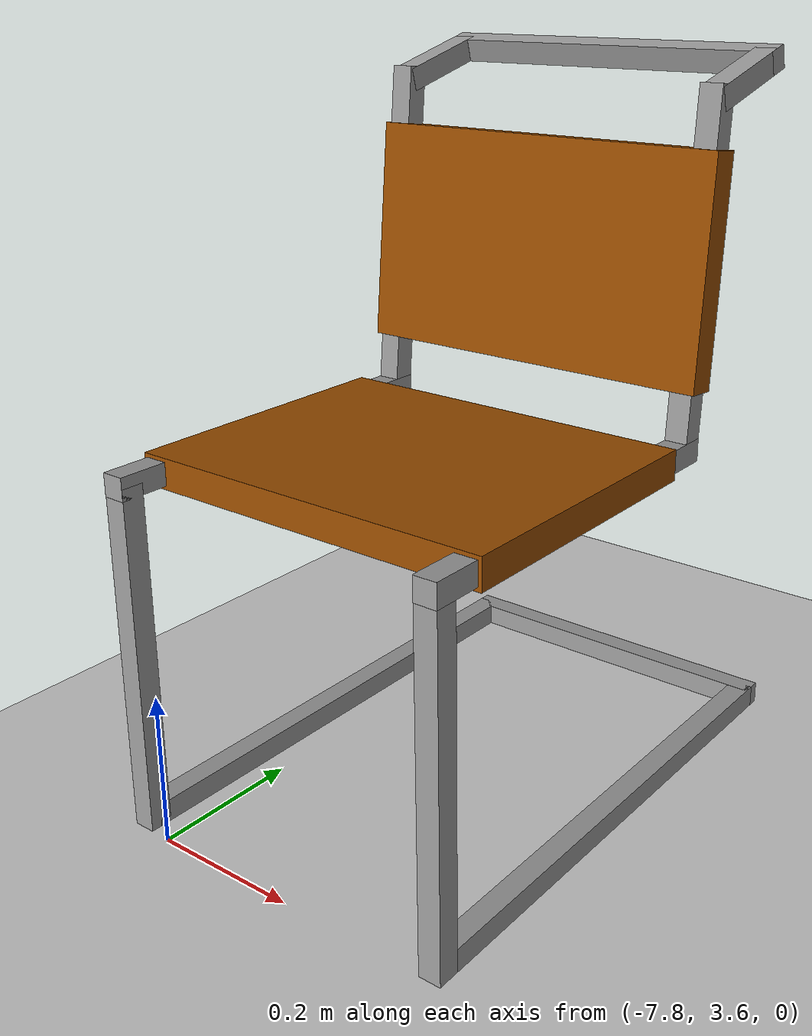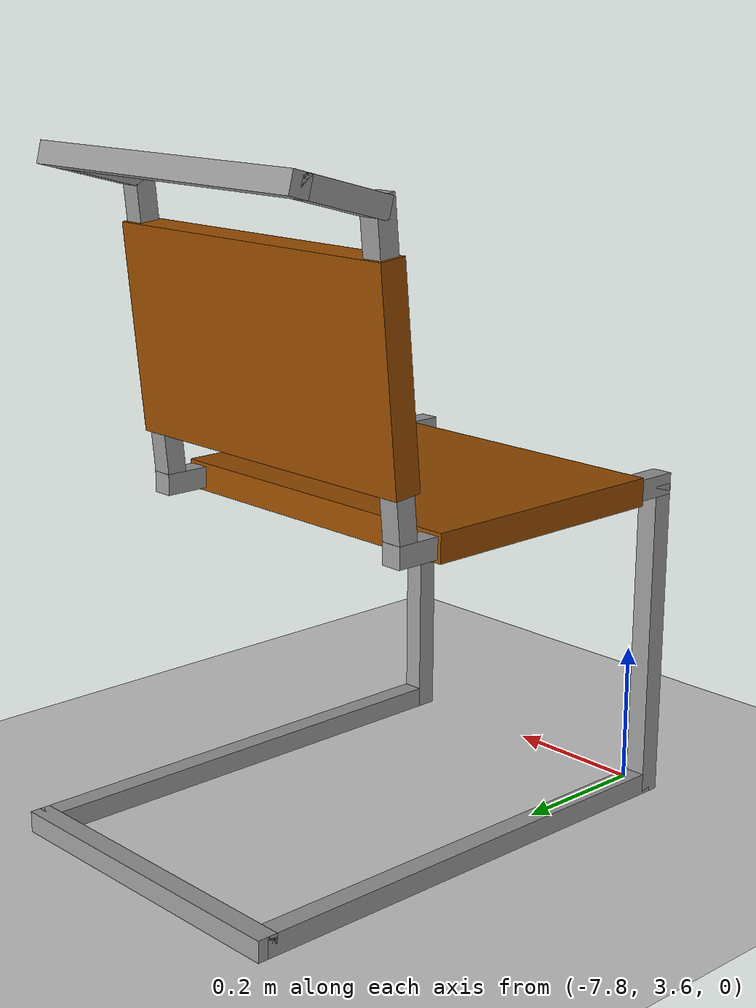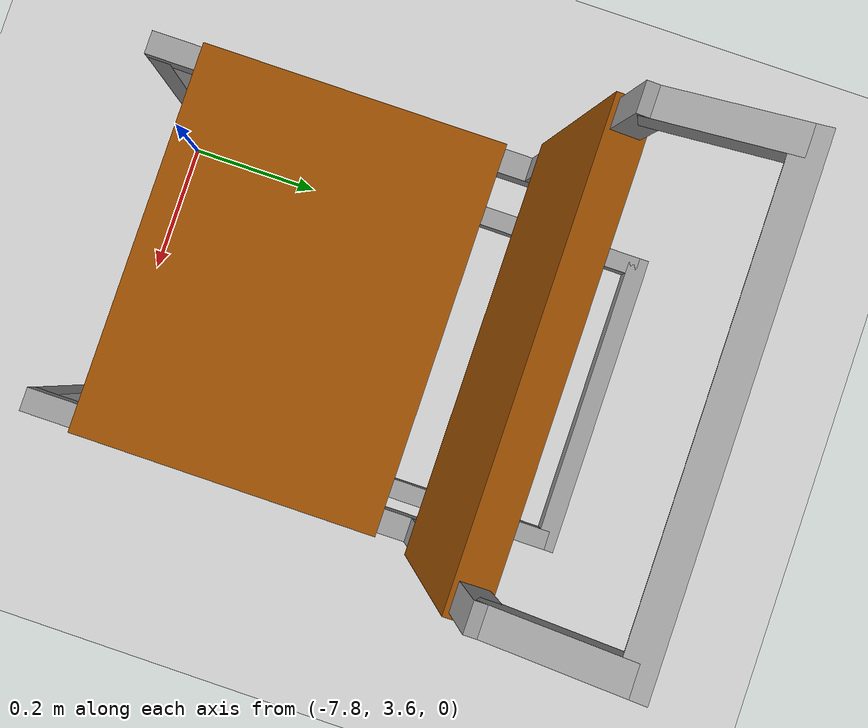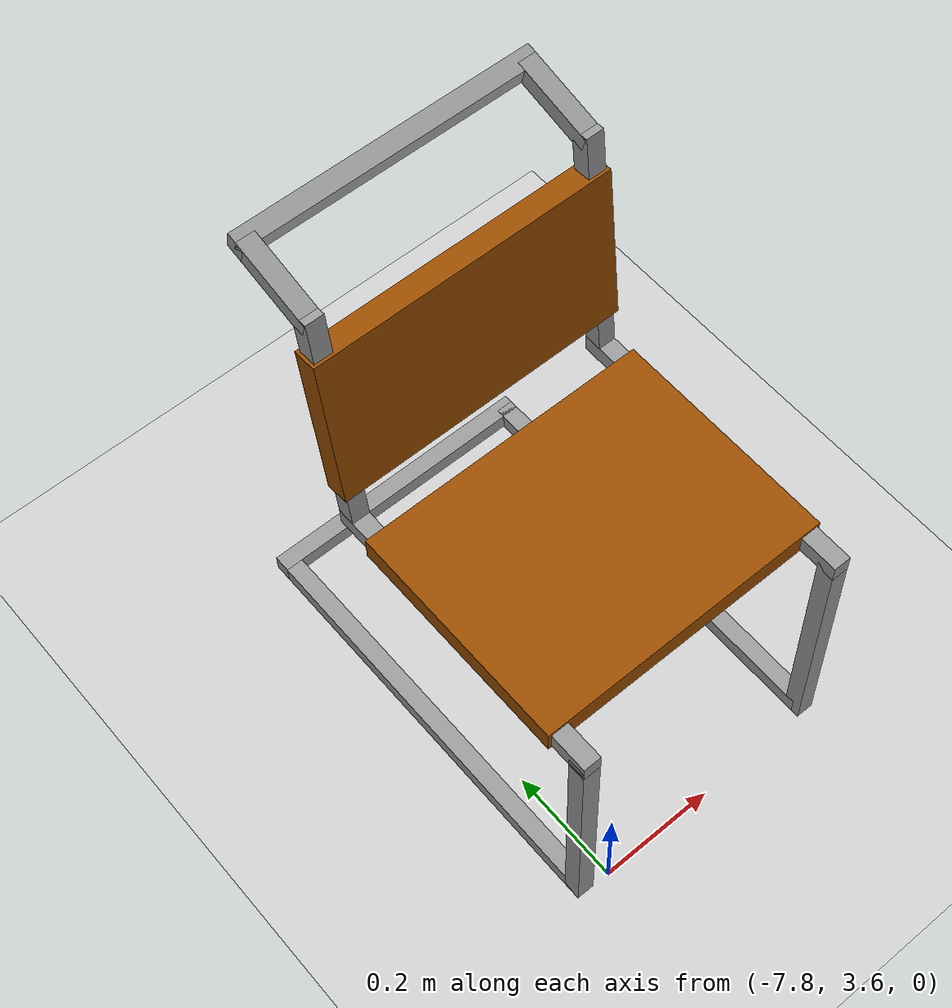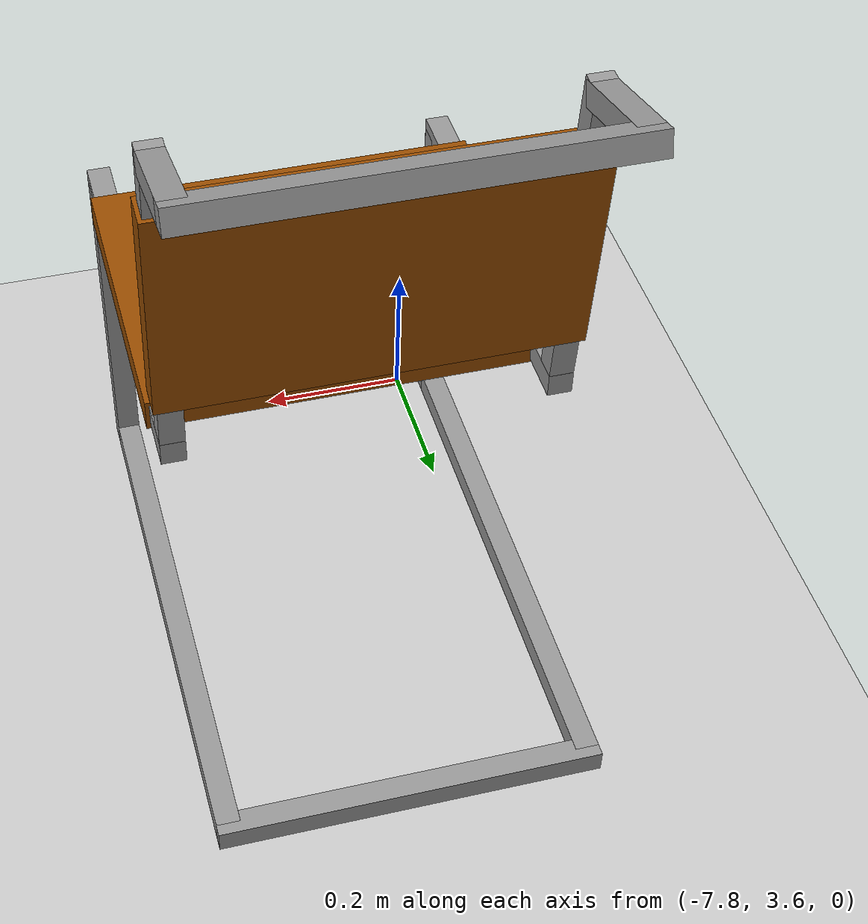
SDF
<sdf version="1.6">
 <world name="default">
  <model name="ground_plane">
   <static>1</static>
   <link name="link">
    <collision name="collision">
     <geometry><plane><normal>0 0 1</normal><size>100 100</size></plane></geometry>
     <surface><friction><ode><mu>100</mu><mu2>50</mu2></ode></friction></surface>
    </collision>
    <visual name="visual">
     <cast_shadows>0</cast_shadows>
     <geometry><plane><normal>0 0 1</normal><size>100 100</size></plane></geometry>
     <material>
      <script><uri>file://media/materials/scripts/gazebo.material</uri><name>Gazebo/Grey</name></script>
     </material>
    </visual>
   </link>
  </model>
  <model name="side_chair_1">
   <link name="link_3">
    <pose>0.475 0 0.46 0 -0 0</pose>
    <inertial>
     <mass>1</mass>
     <inertia>
      <ixx>0.166667</ixx>
      <ixy>0</ixy>
      <ixz>0</ixz>
      <iyy>0.166667</iyy>
      <iyz>0</iyz>
      <izz>0.166667</izz>
     </inertia>
    </inertial>
    <visual name="visual">
     <geometry><box><size>0.39 0.5 0.04</size></box></geometry>
     <material>
      <lighting>1</lighting>
      <script><uri>file://media/materials/scripts/gazebo.material</uri><name>Gazebo/Grey</name></script>
      <shader type="pixel"><normal_map>__default__</normal_map></shader>
      <ambient>0.6 0.3 0 1</ambient>
      <diffuse>0.7 0.7 0.7 1</diffuse>
      <specular>0.01 0.01 0.01 1</specular>
      <emissive>0 0 0 1</emissive>
     </material>
    </visual>
    <collision name="collision">
     <geometry><box><size>0.39 0.5 0.04</size></box></geometry>
     <surface>
      <friction>
       <ode><mu>1</mu><mu2>1</mu2><fdir1>0 0 0</fdir1><slip1>0</slip1><slip2>0</slip2></ode>
       <torsional>
        <coefficient>1</coefficient>
        <patch_radius>0</patch_radius>
        <surface_radius>0</surface_radius>
        <use_patch_radius>1</use_patch_radius>
        <ode><slip>0</slip></ode>
       </torsional>
      </friction>
      <bounce><restitution_coefficient>0</restitution_coefficient><threshold>1e+06</threshold></bounce>
      <contact>
       <collide_without_contact>0</collide_without_contact>
       <collide_without_contact_bitmask>1</collide_without_contact_bitmask>
       <collide_bitmask>1</collide_bitmask>
       <ode>
        <soft_cfm>0</soft_cfm>
        <soft_erp>0.2</soft_erp>
        <kp>1e+13</kp>
        <kd>1</kd>
        <max_vel>0.01</max_vel>
        <min_depth>0</min_depth>
       </ode>
       <bullet>
        <split_impulse>1</split_impulse>
        <split_impulse_penetration_threshold>-0.01</split_impulse_penetration_threshold>
        <soft_cfm>0</soft_cfm>
        <soft_erp>0.2</soft_erp>
        <kp>1e+13</kp>
        <kd>1</kd>
       </bullet>
      </contact>
     </surface>
    </collision>
   </link>
   <link name="link_3_clone">
    <pose>0.21 0 0.68 0 1.4739 0</pose>
    <inertial>
     <mass>0.748385</mass>
     <inertia>
      <ixx>0.0150301</ixx>
      <ixy>0</ixy>
      <ixz>0</ixz>
      <iyy>0.0053689</iyy>
      <iyz>0</iyz>
      <izz>0.0202867</izz>
     </inertia>
    </inertial>
    <visual name="visual">
     <geometry><box><size>0.29 0.5 0.04</size></box></geometry>
     <material>
      <lighting>1</lighting>
      <script><uri>file://media/materials/scripts/gazebo.material</uri><name>Gazebo/Grey</name></script>
      <shader type="pixel"><normal_map>__default__</normal_map></shader>
      <ambient>0.6 0.3 0 1</ambient>
      <diffuse>0.7 0.7 0.7 1</diffuse>
      <specular>0.01 0.01 0.01 1</specular>
      <emissive>0 0 0 1</emissive>
     </material>
    </visual>
    <collision name="collision">
     <geometry><box><size>0.29 0.5 0.04</size></box></geometry>
     <surface>
      <friction>
       <ode><mu>1</mu><mu2>1</mu2><fdir1>0 0 0</fdir1><slip1>0</slip1><slip2>0</slip2></ode>
       <torsional>
        <coefficient>1</coefficient>
        <patch_radius>0</patch_radius>
        <surface_radius>0</surface_radius>
        <use_patch_radius>1</use_patch_radius>
        <ode><slip>0</slip></ode>
       </torsional>
      </friction>
      <bounce><restitution_coefficient>0</restitution_coefficient><threshold>1e+06</threshold></bounce>
      <contact>
       <collide_without_contact>0</collide_without_contact>
       <collide_without_contact_bitmask>1</collide_without_contact_bitmask>
       <collide_bitmask>1</collide_bitmask>
       <ode>
        <soft_cfm>0</soft_cfm>
        <soft_erp>0.2</soft_erp>
        <kp>1e+13</kp>
        <kd>1</kd>
        <max_vel>0.01</max_vel>
        <min_depth>0</min_depth>
       </ode>
       <bullet>
        <split_impulse>1</split_impulse>
        <split_impulse_penetration_threshold>-0.01</split_impulse_penetration_threshold>
        <soft_cfm>0</soft_cfm>
        <soft_erp>0.2</soft_erp>
        <kp>1e+13</kp>
        <kd>1</kd>
       </bullet>
      </contact>
     </surface>
    </collision>
   </link>
   <link name="link_3_clone_0">
    <pose>0.475 -0.23 0.46 0 -0 0</pose>
    <inertial>
     <mass>1.33571</mass>
     <inertia>
      <ixx>0.00020036</ixx>
      <ixy>0</ixy>
      <ixz>0</ixz>
      <iyy>0.0303055</iyy>
      <iyz>0</iyz>
      <izz>0.0303055</izz>
     </inertia>
    </inertial>
    <visual name="visual">
     <geometry><box><size>0.520926 0.03 0.03</size></box></geometry>
     <material>
      <lighting>1</lighting>
      <script><uri>file://media/materials/scripts/gazebo.material</uri><name>Gazebo/Grey</name></script>
      <shader type="pixel"><normal_map>__default__</normal_map></shader>
      <ambient>0.75 0.75 0.75 1</ambient>
      <diffuse>0.7 0.7 0.7 1</diffuse>
      <specular>0.01 0.01 0.01 1</specular>
      <emissive>0 0 0 1</emissive>
     </material>
    </visual>
    <collision name="collision">
     <geometry><box><size>0.520926 0.03 0.03</size></box></geometry>
     <surface>
      <friction>
       <ode><mu>1</mu><mu2>1</mu2><fdir1>0 0 0</fdir1><slip1>0</slip1><slip2>0</slip2></ode>
       <torsional>
        <coefficient>1</coefficient>
        <patch_radius>0</patch_radius>
        <surface_radius>0</surface_radius>
        <use_patch_radius>1</use_patch_radius>
        <ode><slip>0</slip></ode>
       </torsional>
      </friction>
      <bounce><restitution_coefficient>0</restitution_coefficient><threshold>1e+06</threshold></bounce>
      <contact>
       <collide_without_contact>0</collide_without_contact>
       <collide_without_contact_bitmask>1</collide_without_contact_bitmask>
       <collide_bitmask>1</collide_bitmask>
       <ode>
        <soft_cfm>0</soft_cfm>
        <soft_erp>0.2</soft_erp>
        <kp>1e+13</kp>
        <kd>1</kd>
        <max_vel>0.01</max_vel>
        <min_depth>0</min_depth>
       </ode>
       <bullet>
        <split_impulse>1</split_impulse>
        <split_impulse_penetration_threshold>-0.01</split_impulse_penetration_threshold>
        <soft_cfm>0</soft_cfm>
        <soft_erp>0.2</soft_erp>
        <kp>1e+13</kp>
        <kd>1</kd>
       </bullet>
      </contact>
     </surface>
    </collision>
   </link>
   <link name="link_3_clone_0_clone">
    <pose>0.72 -0.23 0.23 0 -0 0</pose>
    <inertial>
     <mass>1.33571</mass>
     <inertia>
      <ixx>0.00020036</ixx>
      <ixy>0</ixy>
      <ixz>0</ixz>
      <iyy>0.0303055</iyy>
      <iyz>0</iyz>
      <izz>0.0303055</izz>
     </inertia>
    </inertial>
    <visual name="visual">
     <geometry><box><size>0.03 0.03 0.46</size></box></geometry>
     <material>
      <lighting>1</lighting>
      <script><uri>file://media/materials/scripts/gazebo.material</uri><name>Gazebo/Grey</name></script>
      <shader type="pixel"><normal_map>__default__</normal_map></shader>
      <ambient>0.75 0.75 0.75 1</ambient>
      <diffuse>0.7 0.7 0.7 1</diffuse>
      <specular>0.01 0.01 0.01 1</specular>
      <emissive>0 0 0 1</emissive>
     </material>
    </visual>
    <collision name="collision">
     <geometry><box><size>0.03 0.03 0.46</size></box></geometry>
     <surface>
      <friction>
       <ode><mu>1</mu><mu2>1</mu2><fdir1>0 0 0</fdir1><slip1>0</slip1><slip2>0</slip2></ode>
       <torsional>
        <coefficient>1</coefficient>
        <patch_radius>0</patch_radius>
        <surface_radius>0</surface_radius>
        <use_patch_radius>1</use_patch_radius>
        <ode><slip>0</slip></ode>
       </torsional>
      </friction>
      <bounce><restitution_coefficient>0</restitution_coefficient><threshold>1e+06</threshold></bounce>
      <contact>
       <collide_without_contact>0</collide_without_contact>
       <collide_without_contact_bitmask>1</collide_without_contact_bitmask>
       <collide_bitmask>1</collide_bitmask>
       <ode>
        <soft_cfm>0</soft_cfm>
        <soft_erp>0.2</soft_erp>
        <kp>1e+13</kp>
        <kd>1</kd>
        <max_vel>0.01</max_vel>
        <min_depth>0</min_depth>
       </ode>
       <bullet>
        <split_impulse>1</split_impulse>
        <split_impulse_penetration_threshold>-0.01</split_impulse_penetration_threshold>
        <soft_cfm>0</soft_cfm>
        <soft_erp>0.2</soft_erp>
        <kp>1e+13</kp>
        <kd>1</kd>
       </bullet>
      </contact>
     </surface>
    </collision>
   </link>
   <link name="link_3_clone_0_clone_0">
    <pose>0.36 -0.23 0.015 0 -0 0</pose>
    <inertial>
     <mass>1.84718</mass>
     <inertia>
      <ixx>0.00027708</ixx>
      <ixy>0</ixy>
      <ixz>0</ixz>
      <iyy>0.0800255</iyy>
      <iyz>0</iyz>
      <izz>0.0800255</izz>
     </inertia>
    </inertial>
    <visual name="visual">
     <geometry><box><size>0.7204 0.03 0.03</size></box></geometry>
     <material>
      <lighting>1</lighting>
      <script><uri>file://media/materials/scripts/gazebo.material</uri><name>Gazebo/Grey</name></script>
      <shader type="pixel"><normal_map>__default__</normal_map></shader>
      <ambient>0.75 0.75 0.75 1</ambient>
      <diffuse>0.7 0.7 0.7 1</diffuse>
      <specular>0.01 0.01 0.01 1</specular>
      <emissive>0 0 0 1</emissive>
     </material>
    </visual>
    <collision name="collision">
     <geometry><box><size>0.7204 0.03 0.03</size></box></geometry>
     <surface>
      <friction>
       <ode><mu>1</mu><mu2>1</mu2><fdir1>0 0 0</fdir1><slip1>0</slip1><slip2>0</slip2></ode>
       <torsional>
        <coefficient>1</coefficient>
        <patch_radius>0</patch_radius>
        <surface_radius>0</surface_radius>
        <use_patch_radius>1</use_patch_radius>
        <ode><slip>0</slip></ode>
       </torsional>
      </friction>
      <bounce><restitution_coefficient>0</restitution_coefficient><threshold>1e+06</threshold></bounce>
      <contact>
       <collide_without_contact>0</collide_without_contact>
       <collide_without_contact_bitmask>1</collide_without_contact_bitmask>
       <collide_bitmask>1</collide_bitmask>
       <ode>
        <soft_cfm>0</soft_cfm>
        <soft_erp>0.2</soft_erp>
        <kp>1e+13</kp>
        <kd>1</kd>
        <max_vel>0.01</max_vel>
        <min_depth>0</min_depth>
       </ode>
       <bullet>
        <split_impulse>1</split_impulse>
        <split_impulse_penetration_threshold>-0.01</split_impulse_penetration_threshold>
        <soft_cfm>0</soft_cfm>
        <soft_erp>0.2</soft_erp>
        <kp>1e+13</kp>
        <kd>1</kd>
       </bullet>
      </contact>
     </surface>
    </collision>
   </link>
   <link name="link_3_clone_0_clone_0_clone">
    <pose>0.13 -0.23 0.9 0 0.262585 0</pose>
    <inertial>
     <mass>0.359555</mass>
     <inertia>
      <ixx>5.393e-05</ixx>
      <ixy>0</ixy>
      <ixz>0</ixz>
      <iyy>0.00061614</iyy>
      <iyz>0</iyz>
      <izz>0.00061614</izz>
     </inertia>
    </inertial>
    <visual name="visual">
     <geometry><box><size>0.140226 0.03 0.03</size></box></geometry>
     <material>
      <lighting>1</lighting>
      <script><uri>file://media/materials/scripts/gazebo.material</uri><name>Gazebo/Grey</name></script>
      <shader type="pixel"><normal_map>__default__</normal_map></shader>
      <ambient>0.75 0.75 0.75 1</ambient>
      <diffuse>0.7 0.7 0.7 1</diffuse>
      <specular>0.01 0.01 0.01 1</specular>
      <emissive>0 0 0 1</emissive>
     </material>
    </visual>
    <collision name="collision">
     <geometry><box><size>0.140226 0.03 0.03</size></box></geometry>
     <surface>
      <friction>
       <ode><mu>1</mu><mu2>1</mu2><fdir1>0 0 0</fdir1><slip1>0</slip1><slip2>0</slip2></ode>
       <torsional>
        <coefficient>1</coefficient>
        <patch_radius>0</patch_radius>
        <surface_radius>0</surface_radius>
        <use_patch_radius>1</use_patch_radius>
        <ode><slip>0</slip></ode>
       </torsional>
      </friction>
      <bounce><restitution_coefficient>0</restitution_coefficient><threshold>1e+06</threshold></bounce>
      <contact>
       <collide_without_contact>0</collide_without_contact>
       <collide_without_contact_bitmask>1</collide_without_contact_bitmask>
       <collide_bitmask>1</collide_bitmask>
       <ode>
        <soft_cfm>0</soft_cfm>
        <soft_erp>0.2</soft_erp>
        <kp>1e+13</kp>
        <kd>1</kd>
        <max_vel>0.01</max_vel>
        <min_depth>0</min_depth>
       </ode>
       <bullet>
        <split_impulse>1</split_impulse>
        <split_impulse_penetration_threshold>-0.01</split_impulse_penetration_threshold>
        <soft_cfm>0</soft_cfm>
        <soft_erp>0.2</soft_erp>
        <kp>1e+13</kp>
        <kd>1</kd>
       </bullet>
      </contact>
     </surface>
    </collision>
   </link>
   <link name="link_3_clone_0_clone_0_clone_0">
    <pose>0.36 0.23 0.015 0 -0 0</pose>
    <inertial>
     <mass>1.84718</mass>
     <inertia>
      <ixx>0.00027708</ixx>
      <ixy>0</ixy>
      <ixz>0</ixz>
      <iyy>0.0800255</iyy>
      <iyz>0</iyz>
      <izz>0.0800255</izz>
     </inertia>
    </inertial>
    <visual name="visual">
     <geometry><box><size>0.7204 0.03 0.03</size></box></geometry>
     <material>
      <lighting>1</lighting>
      <script><uri>file://media/materials/scripts/gazebo.material</uri><name>Gazebo/Grey</name></script>
      <shader type="pixel"><normal_map>__default__</normal_map></shader>
      <ambient>0.75 0.75 0.75 1</ambient>
      <diffuse>0.7 0.7 0.7 1</diffuse>
      <specular>0.01 0.01 0.01 1</specular>
      <emissive>0 0 0 1</emissive>
     </material>
    </visual>
    <collision name="collision">
     <geometry><box><size>0.7204 0.03 0.03</size></box></geometry>
     <surface>
      <friction>
       <ode><mu>1</mu><mu2>1</mu2><fdir1>0 0 0</fdir1><slip1>0</slip1><slip2>0</slip2></ode>
       <torsional>
        <coefficient>1</coefficient>
        <patch_radius>0</patch_radius>
        <surface_radius>0</surface_radius>
        <use_patch_radius>1</use_patch_radius>
        <ode><slip>0</slip></ode>
       </torsional>
      </friction>
      <bounce><restitution_coefficient>0</restitution_coefficient><threshold>1e+06</threshold></bounce>
      <contact>
       <collide_without_contact>0</collide_without_contact>
       <collide_without_contact_bitmask>1</collide_without_contact_bitmask>
       <collide_bitmask>1</collide_bitmask>
       <ode>
        <soft_cfm>0</soft_cfm>
        <soft_erp>0.2</soft_erp>
        <kp>1e+13</kp>
        <kd>1</kd>
        <max_vel>0.01</max_vel>
        <min_depth>0</min_depth>
       </ode>
       <bullet>
        <split_impulse>1</split_impulse>
        <split_impulse_penetration_threshold>-0.01</split_impulse_penetration_threshold>
        <soft_cfm>0</soft_cfm>
        <soft_erp>0.2</soft_erp>
        <kp>1e+13</kp>
        <kd>1</kd>
       </bullet>
      </contact>
     </surface>
    </collision>
   </link>
   <link name="link_3_clone_0_clone_0_clone_clone">
    <pose>0.13 0.23 0.9 0 0.262585 0</pose>
    <inertial>
     <mass>0.359555</mass>
     <inertia>
      <ixx>5.393e-05</ixx>
      <ixy>0</ixy>
      <ixz>0</ixz>
      <iyy>0.00061614</iyy>
      <iyz>0</iyz>
      <izz>0.00061614</izz>
     </inertia>
    </inertial>
    <visual name="visual">
     <geometry><box><size>0.140226 0.03 0.03</size></box></geometry>
     <material>
      <lighting>1</lighting>
      <script><uri>file://media/materials/scripts/gazebo.material</uri><name>Gazebo/Grey</name></script>
      <shader type="pixel"><normal_map>__default__</normal_map></shader>
      <ambient>0.75 0.75 0.75 1</ambient>
      <diffuse>0.7 0.7 0.7 1</diffuse>
      <specular>0.01 0.01 0.01 1</specular>
      <emissive>0 0 0 1</emissive>
     </material>
    </visual>
    <collision name="collision">
     <geometry><box><size>0.140226 0.03 0.03</size></box></geometry>
     <surface>
      <friction>
       <ode><mu>1</mu><mu2>1</mu2><fdir1>0 0 0</fdir1><slip1>0</slip1><slip2>0</slip2></ode>
       <torsional>
        <coefficient>1</coefficient>
        <patch_radius>0</patch_radius>
        <surface_radius>0</surface_radius>
        <use_patch_radius>1</use_patch_radius>
        <ode><slip>0</slip></ode>
       </torsional>
      </friction>
      <bounce><restitution_coefficient>0</restitution_coefficient><threshold>1e+06</threshold></bounce>
      <contact>
       <collide_without_contact>0</collide_without_contact>
       <collide_without_contact_bitmask>1</collide_without_contact_bitmask>
       <collide_bitmask>1</collide_bitmask>
       <ode>
        <soft_cfm>0</soft_cfm>
        <soft_erp>0.2</soft_erp>
        <kp>1e+13</kp>
        <kd>1</kd>
        <max_vel>0.01</max_vel>
        <min_depth>0</min_depth>
       </ode>
       <bullet>
        <split_impulse>1</split_impulse>
        <split_impulse_penetration_threshold>-0.01</split_impulse_penetration_threshold>
        <soft_cfm>0</soft_cfm>
        <soft_erp>0.2</soft_erp>
        <kp>1e+13</kp>
        <kd>1</kd>
       </bullet>
      </contact>
     </surface>
    </collision>
   </link>
   <link name="link_3_clone_0_clone_1">
    <pose>0.475 0.23 0.46 0 -0 0</pose>
    <inertial>
     <mass>1.33571</mass>
     <inertia>
      <ixx>0.00020036</ixx>
      <ixy>0</ixy>
      <ixz>0</ixz>
      <iyy>0.0303055</iyy>
      <iyz>0</iyz>
      <izz>0.0303055</izz>
     </inertia>
    </inertial>
    <visual name="visual">
     <geometry><box><size>0.520926 0.03 0.03</size></box></geometry>
     <material>
      <lighting>1</lighting>
      <script><uri>file://media/materials/scripts/gazebo.material</uri><name>Gazebo/Grey</name></script>
      <shader type="pixel"><normal_map>__default__</normal_map></shader>
      <ambient>0.75 0.75 0.75 1</ambient>
      <diffuse>0.7 0.7 0.7 1</diffuse>
      <specular>0.01 0.01 0.01 1</specular>
      <emissive>0 0 0 1</emissive>
     </material>
    </visual>
    <collision name="collision">
     <geometry><box><size>0.520926 0.03 0.03</size></box></geometry>
     <surface>
      <friction>
       <ode><mu>1</mu><mu2>1</mu2><fdir1>0 0 0</fdir1><slip1>0</slip1><slip2>0</slip2></ode>
       <torsional>
        <coefficient>1</coefficient>
        <patch_radius>0</patch_radius>
        <surface_radius>0</surface_radius>
        <use_patch_radius>1</use_patch_radius>
        <ode><slip>0</slip></ode>
       </torsional>
      </friction>
      <bounce><restitution_coefficient>0</restitution_coefficient><threshold>1e+06</threshold></bounce>
      <contact>
       <collide_without_contact>0</collide_without_contact>
       <collide_without_contact_bitmask>1</collide_without_contact_bitmask>
       <collide_bitmask>1</collide_bitmask>
       <ode>
        <soft_cfm>0</soft_cfm>
        <soft_erp>0.2</soft_erp>
        <kp>1e+13</kp>
        <kd>1</kd>
        <max_vel>0.01</max_vel>
        <min_depth>0</min_depth>
       </ode>
       <bullet>
        <split_impulse>1</split_impulse>
        <split_impulse_penetration_threshold>-0.01</split_impulse_penetration_threshold>
        <soft_cfm>0</soft_cfm>
        <soft_erp>0.2</soft_erp>
        <kp>1e+13</kp>
        <kd>1</kd>
       </bullet>
      </contact>
     </surface>
    </collision>
   </link>
   <link name="link_3_clone_0_clone_clone">
    <pose>0.72 0.23 0.23 0 -0 0</pose>
    <inertial>
     <mass>1.33571</mass>
     <inertia>
      <ixx>0.00020036</ixx>
      <ixy>0</ixy>
      <ixz>0</ixz>
      <iyy>0.0303055</iyy>
      <iyz>0</iyz>
      <izz>0.0303055</izz>
     </inertia>
    </inertial>
    <visual name="visual">
     <geometry><box><size>0.03 0.03 0.46</size></box></geometry>
     <material>
      <lighting>1</lighting>
      <script><uri>file://media/materials/scripts/gazebo.material</uri><name>Gazebo/Grey</name></script>
      <shader type="pixel"><normal_map>__default__</normal_map></shader>
      <ambient>0.75 0.75 0.75 1</ambient>
      <diffuse>0.7 0.7 0.7 1</diffuse>
      <specular>0.01 0.01 0.01 1</specular>
      <emissive>0 0 0 1</emissive>
     </material>
    </visual>
    <collision name="collision">
     <geometry><box><size>0.03 0.03 0.46</size></box></geometry>
     <surface>
      <friction>
       <ode><mu>1</mu><mu2>1</mu2><fdir1>0 0 0</fdir1><slip1>0</slip1><slip2>0</slip2></ode>
       <torsional>
        <coefficient>1</coefficient>
        <patch_radius>0</patch_radius>
        <surface_radius>0</surface_radius>
        <use_patch_radius>1</use_patch_radius>
        <ode><slip>0</slip></ode>
       </torsional>
      </friction>
      <bounce><restitution_coefficient>0</restitution_coefficient><threshold>1e+06</threshold></bounce>
      <contact>
       <collide_without_contact>0</collide_without_contact>
       <collide_without_contact_bitmask>1</collide_without_contact_bitmask>
       <collide_bitmask>1</collide_bitmask>
       <ode>
        <soft_cfm>0</soft_cfm>
        <soft_erp>0.2</soft_erp>
        <kp>1e+13</kp>
        <kd>1</kd>
        <max_vel>0.01</max_vel>
        <min_depth>0</min_depth>
       </ode>
       <bullet>
        <split_impulse>1</split_impulse>
        <split_impulse_penetration_threshold>-0.01</split_impulse_penetration_threshold>
        <soft_cfm>0</soft_cfm>
        <soft_erp>0.2</soft_erp>
        <kp>1e+13</kp>
        <kd>1</kd>
       </bullet>
      </contact>
     </surface>
    </collision>
   </link>
   <link name="link_3_clone_clone">
    <pose>0.21 -0.23 0.68 0 1.4739 0</pose>
    <inertial>
     <mass>1.13912</mass>
     <inertia>
      <ixx>0.00017087</ixx>
      <ixy>0</ixy>
      <ixz>0</ixz>
      <iyy>0.0188203</iyy>
      <iyz>0</iyz>
      <izz>0.0188203</izz>
     </inertia>
    </inertial>
    <visual name="visual">
     <geometry><box><size>0.44 0.03 0.03</size></box></geometry>
     <material>
      <lighting>1</lighting>
      <script><uri>file://media/materials/scripts/gazebo.material</uri><name>Gazebo/Grey</name></script>
      <shader type="pixel"><normal_map>__default__</normal_map></shader>
      <ambient>0.75 0.75 0.75 1</ambient>
      <diffuse>0.7 0.7 0.7 1</diffuse>
      <specular>0.01 0.01 0.01 1</specular>
      <emissive>0 0 0 1</emissive>
     </material>
    </visual>
    <collision name="collision">
     <geometry><box><size>0.444254 0.03 0.03</size></box></geometry>
     <surface>
      <friction>
       <ode><mu>1</mu><mu2>1</mu2><fdir1>0 0 0</fdir1><slip1>0</slip1><slip2>0</slip2></ode>
       <torsional>
        <coefficient>1</coefficient>
        <patch_radius>0</patch_radius>
        <surface_radius>0</surface_radius>
        <use_patch_radius>1</use_patch_radius>
        <ode><slip>0</slip></ode>
       </torsional>
      </friction>
      <bounce><restitution_coefficient>0</restitution_coefficient><threshold>1e+06</threshold></bounce>
      <contact>
       <collide_without_contact>0</collide_without_contact>
       <collide_without_contact_bitmask>1</collide_without_contact_bitmask>
       <collide_bitmask>1</collide_bitmask>
       <ode>
        <soft_cfm>0</soft_cfm>
        <soft_erp>0.2</soft_erp>
        <kp>1e+13</kp>
        <kd>1</kd>
        <max_vel>0.01</max_vel>
        <min_depth>0</min_depth>
       </ode>
       <bullet>
        <split_impulse>1</split_impulse>
        <split_impulse_penetration_threshold>-0.01</split_impulse_penetration_threshold>
        <soft_cfm>0</soft_cfm>
        <soft_erp>0.2</soft_erp>
        <kp>1e+13</kp>
        <kd>1</kd>
       </bullet>
      </contact>
     </surface>
    </collision>
   </link>
   <link name="link_3_clone_clone_clone">
    <pose>0.21 0.23 0.68 0 1.4739 0</pose>
    <inertial>
     <mass>1.13912</mass>
     <inertia>
      <ixx>0.00017087</ixx>
      <ixy>0</ixy>
      <ixz>0</ixz>
      <iyy>0.0188203</iyy>
      <iyz>0</iyz>
      <izz>0.0188203</izz>
     </inertia>
    </inertial>
    <visual name="visual">
     <geometry><box><size>0.44 0.03 0.03</size></box></geometry>
     <material>
      <lighting>1</lighting>
      <script><uri>file://media/materials/scripts/gazebo.material</uri><name>Gazebo/Grey</name></script>
      <shader type="pixel"><normal_map>__default__</normal_map></shader>
      <ambient>0.75 0.75 0.75 1</ambient>
      <diffuse>0.7 0.7 0.7 1</diffuse>
      <specular>0.01 0.01 0.01 1</specular>
      <emissive>0 0 0 1</emissive>
     </material>
    </visual>
    <collision name="collision">
     <geometry><box><size>0.444254 0.03 0.03</size></box></geometry>
     <surface>
      <friction>
       <ode><mu>1</mu><mu2>1</mu2><fdir1>0 0 0</fdir1><slip1>0</slip1><slip2>0</slip2></ode>
       <torsional>
        <coefficient>1</coefficient>
        <patch_radius>0</patch_radius>
        <surface_radius>0</surface_radius>
        <use_patch_radius>1</use_patch_radius>
        <ode><slip>0</slip></ode>
       </torsional>
      </friction>
      <bounce><restitution_coefficient>0</restitution_coefficient><threshold>1e+06</threshold></bounce>
      <contact>
       <collide_without_contact>0</collide_without_contact>
       <collide_without_contact_bitmask>1</collide_without_contact_bitmask>
       <collide_bitmask>1</collide_bitmask>
       <ode>
        <soft_cfm>0</soft_cfm>
        <soft_erp>0.2</soft_erp>
        <kp>1e+13</kp>
        <kd>1</kd>
        <max_vel>0.01</max_vel>
        <min_depth>0</min_depth>
       </ode>
       <bullet>
        <split_impulse>1</split_impulse>
        <split_impulse_penetration_threshold>-0.01</split_impulse_penetration_threshold>
        <soft_cfm>0</soft_cfm>
        <soft_erp>0.2</soft_erp>
        <kp>1e+13</kp>
        <kd>1</kd>
       </bullet>
      </contact>
     </surface>
    </collision>
   </link>
   <link name="link_4">
    <pose>0 0 0.015 0 -0 0</pose>
    <inertial>
     <mass>1.05988</mass>
     <inertia>
      <ixx>0.0239014</ixx>
      <ixy>0</ixy>
      <ixz>0</ixz>
      <iyy>0.00015898</iyy>
      <iyz>0</iyz>
      <izz>0.0239014</izz>
     </inertia>
    </inertial>
    <visual name="visual">
     <geometry><box><size>0.03 0.49 0.03</size></box></geometry>
     <material>
      <lighting>1</lighting>
      <script><uri>file://media/materials/scripts/gazebo.material</uri><name>Gazebo/Grey</name></script>
      <shader type="pixel"><normal_map>__default__</normal_map></shader>
      <ambient>0.75 0.75 0.75 1</ambient>
      <diffuse>0.7 0.7 0.7 1</diffuse>
      <specular>0.01 0.01 0.01 1</specular>
      <emissive>0 0 0 1</emissive>
     </material>
    </visual>
    <collision name="collision">
     <geometry><box><size>0.03 0.49 0.03</size></box></geometry>
     <surface>
      <friction>
       <ode><mu>1</mu><mu2>1</mu2><fdir1>0 0 0</fdir1><slip1>0</slip1><slip2>0</slip2></ode>
       <torsional>
        <coefficient>1</coefficient>
        <patch_radius>0</patch_radius>
        <surface_radius>0</surface_radius>
        <use_patch_radius>1</use_patch_radius>
        <ode><slip>0</slip></ode>
       </torsional>
      </friction>
      <bounce><restitution_coefficient>0</restitution_coefficient><threshold>1e+06</threshold></bounce>
      <contact>
       <collide_without_contact>0</collide_without_contact>
       <collide_without_contact_bitmask>1</collide_without_contact_bitmask>
       <collide_bitmask>1</collide_bitmask>
       <ode>
        <soft_cfm>0</soft_cfm>
        <soft_erp>0.2</soft_erp>
        <kp>1e+13</kp>
        <kd>1</kd>
        <max_vel>0.01</max_vel>
        <min_depth>0</min_depth>
       </ode>
       <bullet>
        <split_impulse>1</split_impulse>
        <split_impulse_penetration_threshold>-0.01</split_impulse_penetration_threshold>
        <soft_cfm>0</soft_cfm>
        <soft_erp>0.2</soft_erp>
        <kp>1e+13</kp>
        <kd>1</kd>
       </bullet>
      </contact>
     </surface>
    </collision>
   </link>
   <link name="link_4_clone">
    <pose>0.061734 0 0.918349 0 0.262585 0</pose>
    <inertial>
     <mass>1.05988</mass>
     <inertia>
      <ixx>0.0239014</ixx>
      <ixy>0</ixy>
      <ixz>0</ixz>
      <iyy>0.00015898</iyy>
      <iyz>0</iyz>
      <izz>0.0239014</izz>
     </inertia>
    </inertial>
    <visual name="visual">
     <geometry><box><size>0.03 0.49 0.03</size></box></geometry>
     <material>
      <lighting>1</lighting>
      <script><uri>file://media/materials/scripts/gazebo.material</uri><name>Gazebo/Grey</name></script>
      <shader type="pixel"><normal_map>__default__</normal_map></shader>
      <ambient>0.75 0.75 0.75 1</ambient>
      <diffuse>0.7 0.7 0.7 1</diffuse>
      <specular>0.01 0.01 0.01 1</specular>
      <emissive>0 0 0 1</emissive>
     </material>
    </visual>
    <collision name="collision">
     <geometry><box><size>0.03 0.49 0.03</size></box></geometry>
     <surface>
      <friction>
       <ode><mu>1</mu><mu2>1</mu2><fdir1>0 0 0</fdir1><slip1>0</slip1><slip2>0</slip2></ode>
       <torsional>
        <coefficient>1</coefficient>
        <patch_radius>0</patch_radius>
        <surface_radius>0</surface_radius>
        <use_patch_radius>1</use_patch_radius>
        <ode><slip>0</slip></ode>
       </torsional>
      </friction>
      <bounce><restitution_coefficient>0</restitution_coefficient><threshold>1e+06</threshold></bounce>
      <contact>
       <collide_without_contact>0</collide_without_contact>
       <collide_without_contact_bitmask>1</collide_without_contact_bitmask>
       <collide_bitmask>1</collide_bitmask>
       <ode>
        <soft_cfm>0</soft_cfm>
        <soft_erp>0.2</soft_erp>
        <kp>1e+13</kp>
        <kd>1</kd>
        <max_vel>0.01</max_vel>
        <min_depth>0</min_depth>
       </ode>
       <bullet>
        <split_impulse>1</split_impulse>
        <split_impulse_penetration_threshold>-0.01</split_impulse_penetration_threshold>
        <soft_cfm>0</soft_cfm>
        <soft_erp>0.2</soft_erp>
        <kp>1e+13</kp>
        <kd>1</kd>
       </bullet>
      </contact>
     </surface>
    </collision>
   </link>
   <joint name="link_3_clone_0_JOINT_10" type="fixed">
    <parent>link_3_clone_0</parent>
    <child>link_3</child>
    <physics>
     <ode><limit><cfm>0</cfm><erp>0.2</erp></limit><suspension><cfm>0</cfm><erp>0.2</erp></suspension></ode>
    </physics>
   </joint>
   <joint name="link_3_clone_0_JOINT_6" type="fixed">
    <parent>link_3_clone_0</parent>
    <child>link_3_clone_clone</child>
    <physics>
     <ode><limit><cfm>0</cfm><erp>0.2</erp></limit><suspension><cfm>0</cfm><erp>0.2</erp></suspension></ode>
    </physics>
   </joint>
   <joint name="link_3_clone_0_clone_0_JOINT_4" type="fixed">
    <parent>link_3_clone_0_clone_0</parent>
    <child>link_3_clone_0_clone</child>
    <physics>
     <ode><limit><cfm>0</cfm><erp>0.2</erp></limit><suspension><cfm>0</cfm><erp>0.2</erp></suspension></ode>
    </physics>
   </joint>
   <joint name="link_3_clone_0_clone_0_clone_0_JOINT_11" type="fixed">
    <parent>link_3_clone_0_clone_0_clone_0</parent>
    <child>link_3_clone_0_clone_clone</child>
    <physics>
     <ode><limit><cfm>0</cfm><erp>0.2</erp></limit><suspension><cfm>0</cfm><erp>0.2</erp></suspension></ode>
    </physics>
   </joint>
   <joint name="link_3_clone_0_clone_0_clone_JOINT_8" type="fixed">
    <parent>link_3_clone_0_clone_0_clone</parent>
    <child>link_4_clone</child>
    <physics>
     <ode><limit><cfm>0</cfm><erp>0.2</erp></limit><suspension><cfm>0</cfm><erp>0.2</erp></suspension></ode>
    </physics>
   </joint>
   <joint name="link_3_clone_0_clone_0_clone_clone_JOINT_15" type="fixed">
    <parent>link_3_clone_0_clone_0_clone_clone</parent>
    <child>link_4_clone</child>
    <physics>
     <ode><limit><cfm>0</cfm><erp>0.2</erp></limit><suspension><cfm>0</cfm><erp>0.2</erp></suspension></ode>
    </physics>
   </joint>
   <joint name="link_3_clone_0_clone_1_JOINT_13" type="fixed">
    <parent>link_3_clone_0_clone_1</parent>
    <child>link_3_clone_clone_clone</child>
    <physics>
     <ode><limit><cfm>0</cfm><erp>0.2</erp></limit><suspension><cfm>0</cfm><erp>0.2</erp></suspension></ode>
    </physics>
   </joint>
   <joint name="link_3_clone_0_clone_1_JOINT_17" type="fixed">
    <parent>link_3_clone_0_clone_1</parent>
    <child>link_3</child>
    <physics>
     <ode><limit><cfm>0</cfm><erp>0.2</erp></limit><suspension><cfm>0</cfm><erp>0.2</erp></suspension></ode>
    </physics>
   </joint>
   <joint name="link_3_clone_0_clone_JOINT_5" type="fixed">
    <parent>link_3_clone_0_clone</parent>
    <child>link_3_clone_0</child>
    <physics>
     <ode><limit><cfm>0</cfm><erp>0.2</erp></limit><suspension><cfm>0</cfm><erp>0.2</erp></suspension></ode>
    </physics>
   </joint>
   <joint name="link_3_clone_0_clone_clone_JOINT_12" type="fixed">
    <parent>link_3_clone_0_clone_clone</parent>
    <child>link_3_clone_0_clone_1</child>
    <physics>
     <ode><limit><cfm>0</cfm><erp>0.2</erp></limit><suspension><cfm>0</cfm><erp>0.2</erp></suspension></ode>
    </physics>
   </joint>
   <joint name="link_3_clone_clone_JOINT_7" type="fixed">
    <parent>link_3_clone_clone</parent>
    <child>link_3_clone_0_clone_0_clone</child>
    <physics>
     <ode><limit><cfm>0</cfm><erp>0.2</erp></limit><suspension><cfm>0</cfm><erp>0.2</erp></suspension></ode>
    </physics>
   </joint>
   <joint name="link_3_clone_clone_JOINT_9" type="fixed">
    <parent>link_3_clone_clone</parent>
    <child>link_3_clone</child>
    <physics>
     <ode><limit><cfm>0</cfm><erp>0.2</erp></limit><suspension><cfm>0</cfm><erp>0.2</erp></suspension></ode>
    </physics>
   </joint>
   <joint name="link_3_clone_clone_clone_JOINT_14" type="fixed">
    <parent>link_3_clone_clone_clone</parent>
    <child>link_3_clone_0_clone_0_clone_clone</child>
    <physics>
     <ode><limit><cfm>0</cfm><erp>0.2</erp></limit><suspension><cfm>0</cfm><erp>0.2</erp></suspension></ode>
    </physics>
   </joint>
   <joint name="link_3_clone_clone_clone_JOINT_16" type="fixed">
    <parent>link_3_clone_clone_clone</parent>
    <child>link_3_clone</child>
    <physics>
     <ode><limit><cfm>0</cfm><erp>0.2</erp></limit><suspension><cfm>0</cfm><erp>0.2</erp></suspension></ode>
    </physics>
   </joint>
   <joint name="link_4_JOINT_2" type="fixed">
    <parent>link_4</parent>
    <child>link_3_clone_0_clone_0_clone_0</child>
    <physics>
     <ode><limit><cfm>0</cfm><erp>0.2</erp></limit><suspension><cfm>0</cfm><erp>0.2</erp></suspension></ode>
    </physics>
   </joint>
   <joint name="link_4_JOINT_3" type="fixed">
    <parent>link_4</parent>
    <child>link_3_clone_0_clone_0</child>
    <physics>
     <ode><limit><cfm>0</cfm><erp>0.2</erp></limit><suspension><cfm>0</cfm><erp>0.2</erp></suspension></ode>
    </physics>
   </joint>
   <static>0</static>
   <pose>-7.61489 4.3354 -2.9e-05 -2e-06 -3.2e-05 -1.5707</pose>
  </model>
 </world>
</sdf>
